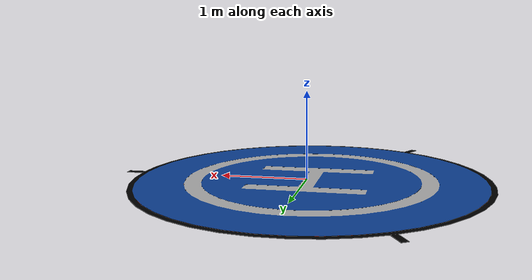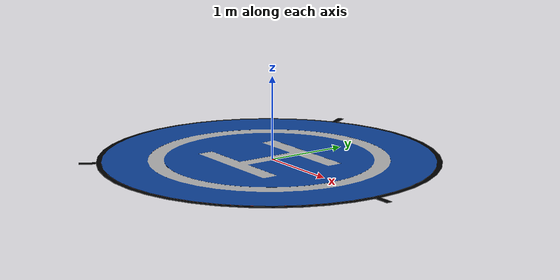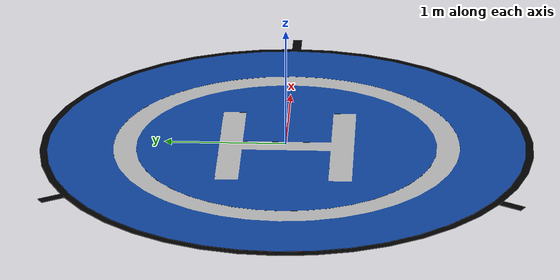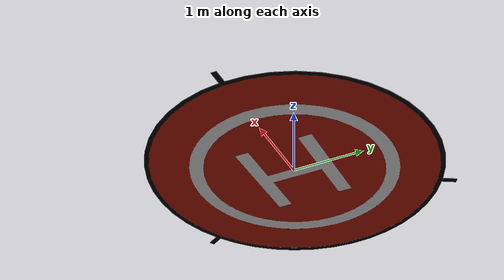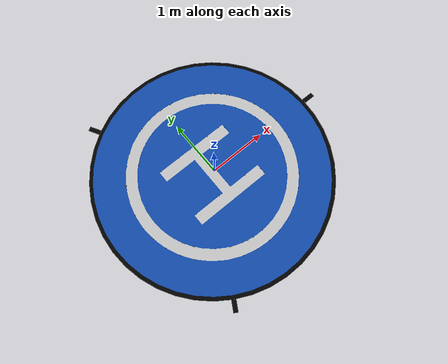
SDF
<?xml version="1.0"?>
<sdf version='1.10'>
    <model name='landing_pad'>
    	<pose> 0 0 0 3.14 0 0 </pose>
        <link name='base_link'>
            <collision name='base_link_collision'>
                <geometry>
                    <cylinder>
                        <radius>2.032</radius>
                        <length>0.003048</length>
                    </cylinder>
                </geometry>
            </collision>
            <visual name='base_link_visual'>
                <geometry>
                    <mesh>
                        <uri>file:///home/developer/workspace/worlds/LandingPad/LandingPad.dae</uri>
                        <scale>5 5 5</scale>
                    </mesh>
                </geometry>
            </visual>
        </link>
    </model>
</sdf>
